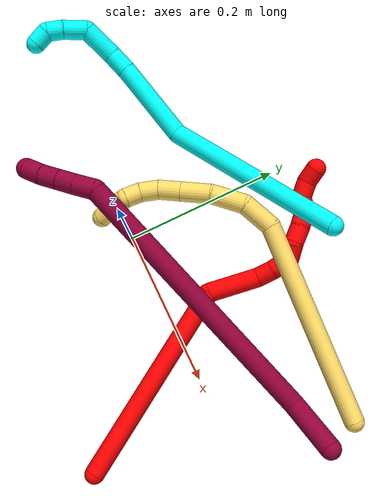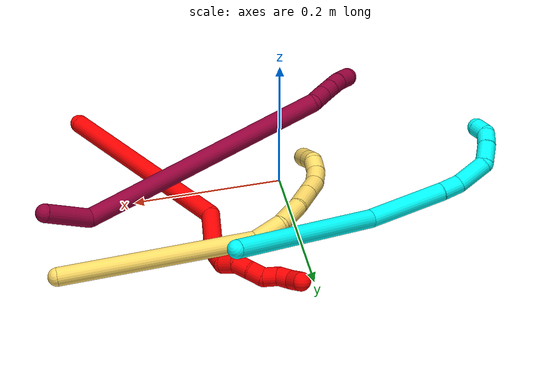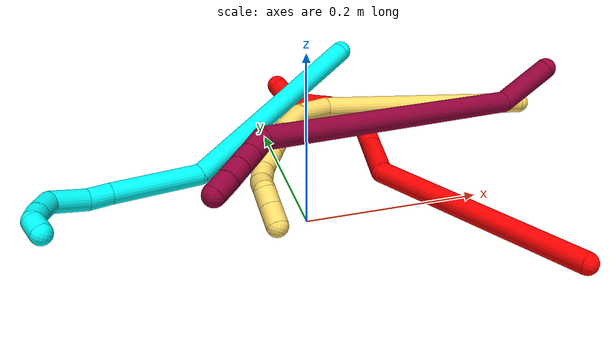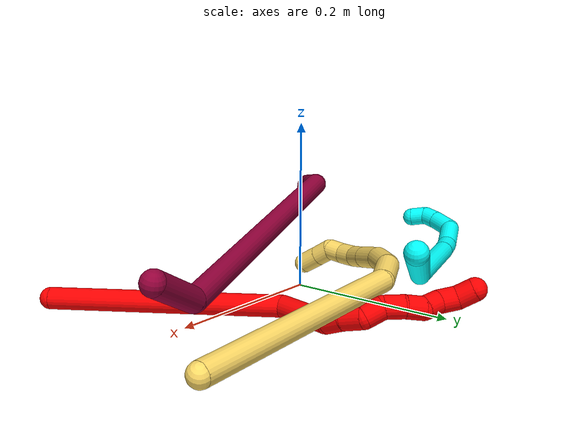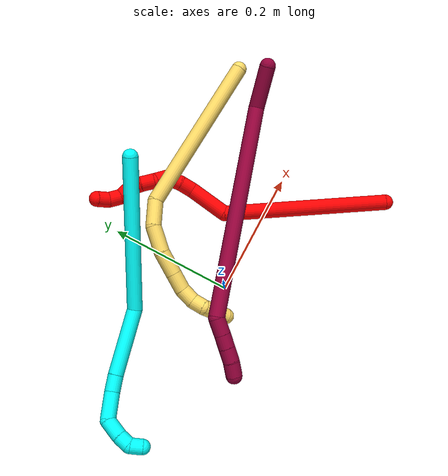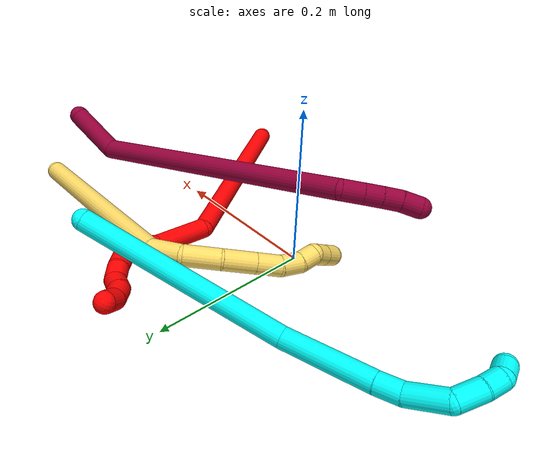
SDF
<sdf version="1.7">
 <world name="default">
  <model name="2">
   <static>0</static>
   <link name="2">
    <collision name="collision-cylinder-e_1_1_4">
     <pose>-0.067282 0.101633 -0.0497 -2.02562 -0.536521 0.829711</pose>
     <geometry><cylinder><radius>0.0125</radius><length>0.263259</length></cylinder></geometry>
     <surface>
      <friction><ode><mu>1.16</mu><mu2>1.16</mu2><slip1>0</slip1><slip2>0</slip2></ode></friction>
      <contact><ode><kp>1e+06</kp><kd>1</kd><max_vel>0</max_vel><min_depth>0.001</min_depth></ode></contact>
     </surface>
    </collision>
    <visual name="visual-cylinder-e_1_1_4">
     <pose>-0.067282 0.101633 -0.0497 -2.02562 -0.536521 0.829711</pose>
     <geometry><cylinder><radius>0.0125</radius><length>0.263259</length></cylinder></geometry>
     <material><ambient>1 0 0 1</ambient></material>
    </visual>
    <collision name="collision-cylinder-e_2_4_5">
     <pose>-0.129361 0.230539 -0.117364 -2.15326 0.158013 -0.291817</pose>
     <geometry><cylinder><radius>0.0125</radius><length>0.066138</length></cylinder></geometry>
     <surface>
      <friction><ode><mu>1.16</mu><mu2>1.16</mu2><slip1>0</slip1><slip2>0</slip2></ode></friction>
      <contact><ode><kp>1e+06</kp><kd>1</kd><max_vel>0</max_vel><min_depth>0.001</min_depth></ode></contact>
     </surface>
    </collision>
    <visual name="visual-cylinder-e_2_4_5">
     <pose>-0.129361 0.230539 -0.117364 -2.15326 0.158013 -0.291817</pose>
     <geometry><cylinder><radius>0.0125</radius><length>0.066138</length></cylinder></geometry>
     <material><ambient>1 0 0 1</ambient></material>
    </visual>
    <collision name="collision-cylinder-e_3_5_6">
     <pose>-0.123428 0.269037 -0.137258 -1.741 0.063919 -0.075831</pose>
     <geometry><cylinder><radius>0.0125</radius><length>0.022827</length></cylinder></geometry>
     <surface>
      <friction><ode><mu>1.16</mu><mu2>1.16</mu2><slip1>0</slip1><slip2>0</slip2></ode></friction>
      <contact><ode><kp>1e+06</kp><kd>1</kd><max_vel>0</max_vel><min_depth>0.001</min_depth></ode></contact>
     </surface>
    </collision>
    <visual name="visual-cylinder-e_3_5_6">
     <pose>-0.123428 0.269037 -0.137258 -1.741 0.063919 -0.075831</pose>
     <geometry><cylinder><radius>0.0125</radius><length>0.022827</length></cylinder></geometry>
     <material><ambient>1 0 0 1</ambient></material>
    </visual>
    <collision name="collision-cylinder-e_4_6_7">
     <pose>-0.123754 0.291784 -0.142481 -1.84923 -0.087812 0.116374</pose>
     <geometry><cylinder><radius>0.0125</radius><length>0.024058</length></cylinder></geometry>
     <surface>
      <friction><ode><mu>1.16</mu><mu2>1.16</mu2><slip1>0</slip1><slip2>0</slip2></ode></friction>
      <contact><ode><kp>1e+06</kp><kd>1</kd><max_vel>0</max_vel><min_depth>0.001</min_depth></ode></contact>
     </surface>
    </collision>
    <visual name="visual-cylinder-e_4_6_7">
     <pose>-0.123754 0.291784 -0.142481 -1.84923 -0.087812 0.116374</pose>
     <geometry><cylinder><radius>0.0125</radius><length>0.024058</length></cylinder></geometry>
     <material><ambient>1 0 0 1</ambient></material>
    </visual>
    <collision name="collision-cylinder-e_5_7_8">
     <pose>-0.131424 0.311554 -0.14424 -1.38688 -0.667612 0.561236</pose>
     <geometry><cylinder><radius>0.0125</radius><length>0.021368</length></cylinder></geometry>
     <surface>
      <friction><ode><mu>1.16</mu><mu2>1.16</mu2><slip1>0</slip1><slip2>0</slip2></ode></friction>
      <contact><ode><kp>1e+06</kp><kd>1</kd><max_vel>0</max_vel><min_depth>0.001</min_depth></ode></contact>
     </surface>
    </collision>
    <visual name="visual-cylinder-e_5_7_8">
     <pose>-0.131424 0.311554 -0.14424 -1.38688 -0.667612 0.561236</pose>
     <geometry><cylinder><radius>0.0125</radius><length>0.021368</length></cylinder></geometry>
     <material><ambient>1 0 0 1</ambient></material>
    </visual>
    <collision name="collision-cylinder-e_6_8_9">
     <pose>-0.145133 0.327549 -0.145998 -1.97273 -0.700375 1.00895</pose>
     <geometry><cylinder><radius>0.0125</radius><length>0.022017</length></cylinder></geometry>
     <surface>
      <friction><ode><mu>1.16</mu><mu2>1.16</mu2><slip1>0</slip1><slip2>0</slip2></ode></friction>
      <contact><ode><kp>1e+06</kp><kd>1</kd><max_vel>0</max_vel><min_depth>0.001</min_depth></ode></contact>
     </surface>
    </collision>
    <visual name="visual-cylinder-e_6_8_9">
     <pose>-0.145133 0.327549 -0.145998 -1.97273 -0.700375 1.00895</pose>
     <geometry><cylinder><radius>0.0125</radius><length>0.022017</length></cylinder></geometry>
     <material><ambient>1 0 0 1</ambient></material>
    </visual>
    <collision name="collision-cylinder-e_7_9_10">
     <pose>-0.159547 0.340988 -0.153201 -2.1727 -0.814339 1.373</pose>
     <geometry><cylinder><radius>0.0125</radius><length>0.020126</length></cylinder></geometry>
     <surface>
      <friction><ode><mu>1.16</mu><mu2>1.16</mu2><slip1>0</slip1><slip2>0</slip2></ode></friction>
      <contact><ode><kp>1e+06</kp><kd>1</kd><max_vel>0</max_vel><min_depth>0.001</min_depth></ode></contact>
     </surface>
    </collision>
    <visual name="visual-cylinder-e_7_9_10">
     <pose>-0.159547 0.340988 -0.153201 -2.1727 -0.814339 1.373</pose>
     <geometry><cylinder><radius>0.0125</radius><length>0.020126</length></cylinder></geometry>
     <material><ambient>1 0 0 1</ambient></material>
    </visual>
    <collision name="collision-cylinder-e_8_10_11">
     <pose>-0.175999 0.350679 -0.156194 -1.34517 -1.1487 0.951799</pose>
     <geometry><cylinder><radius>0.0125</radius><length>0.020023</length></cylinder></geometry>
     <surface>
      <friction><ode><mu>1.16</mu><mu2>1.16</mu2><slip1>0</slip1><slip2>0</slip2></ode></friction>
      <contact><ode><kp>1e+06</kp><kd>1</kd><max_vel>0</max_vel><min_depth>0.001</min_depth></ode></contact>
     </surface>
    </collision>
    <visual name="visual-cylinder-e_8_10_11">
     <pose>-0.175999 0.350679 -0.156194 -1.34517 -1.1487 0.951799</pose>
     <geometry><cylinder><radius>0.0125</radius><length>0.020023</length></cylinder></geometry>
     <material><ambient>1 0 0 1</ambient></material>
    </visual>
    <collision name="collision-cylinder-e_9_11_12">
     <pose>-0.191689 0.362199 -0.156566 -1.74047 -0.70979 0.828131</pose>
     <geometry><cylinder><radius>0.0125</radius><length>0.020126</length></cylinder></geometry>
     <surface>
      <friction><ode><mu>1.16</mu><mu2>1.16</mu2><slip1>0</slip1><slip2>0</slip2></ode></friction>
      <contact><ode><kp>1e+06</kp><kd>1</kd><max_vel>0</max_vel><min_depth>0.001</min_depth></ode></contact>
     </surface>
    </collision>
    <visual name="visual-cylinder-e_9_11_12">
     <pose>-0.191689 0.362199 -0.156566 -1.74047 -0.70979 0.828131</pose>
     <geometry><cylinder><radius>0.0125</radius><length>0.020126</length></cylinder></geometry>
     <material><ambient>1 0 0 1</ambient></material>
    </visual>
    <collision name="collision-cylinder-e_10_12_2">
     <pose>-0.20158 0.379156 -0.157157 -1.49701 -0.338739 0.315034</pose>
     <geometry><cylinder><radius>0.0125</radius><length>0.020057</length></cylinder></geometry>
     <surface>
      <friction><ode><mu>1.16</mu><mu2>1.16</mu2><slip1>0</slip1><slip2>0</slip2></ode></friction>
      <contact><ode><kp>1e+06</kp><kd>1</kd><max_vel>0</max_vel><min_depth>0.001</min_depth></ode></contact>
     </surface>
    </collision>
    <visual name="visual-cylinder-e_10_12_2">
     <pose>-0.20158 0.379156 -0.157157 -1.49701 -0.338739 0.315034</pose>
     <geometry><cylinder><radius>0.0125</radius><length>0.020057</length></cylinder></geometry>
     <material><ambient>1 0 0 1</ambient></material>
    </visual>
    <collision name="collision-sphere-2">
     <pose>-0.204912 0.388588 -0.15646 0 -0 0</pose>
     <geometry><sphere><radius>0.0125</radius></sphere></geometry>
     <surface>
      <friction><ode><mu>1.16</mu><mu2>1.16</mu2><slip1>0</slip1><slip2>0</slip2></ode></friction>
      <contact><ode><kp>1e+06</kp><kd>1</kd><max_vel>0</max_vel><min_depth>0.001</min_depth></ode></contact>
     </surface>
    </collision>
    <visual name="visual-sphere-2">
     <pose>-0.204912 0.388588 -0.15646 0 -0 0</pose>
     <geometry><sphere><radius>0.0125</radius></sphere></geometry>
     <material><ambient>1 0 0 1</ambient></material>
    </visual>
    <collision name="collision-sphere-12">
     <pose>-0.198247 0.369723 -0.157855 0 -0 0</pose>
     <geometry><sphere><radius>0.0125</radius></sphere></geometry>
     <surface>
      <friction><ode><mu>1.16</mu><mu2>1.16</mu2><slip1>0</slip1><slip2>0</slip2></ode></friction>
      <contact><ode><kp>1e+06</kp><kd>1</kd><max_vel>0</max_vel><min_depth>0.001</min_depth></ode></contact>
     </surface>
    </collision>
    <visual name="visual-sphere-12">
     <pose>-0.198247 0.369723 -0.157855 0 -0 0</pose>
     <geometry><sphere><radius>0.0125</radius></sphere></geometry>
     <material><ambient>1 0 0 1</ambient></material>
    </visual>
    <collision name="collision-sphere-11">
     <pose>-0.185131 0.354676 -0.155277 0 -0 0</pose>
     <geometry><sphere><radius>0.0125</radius></sphere></geometry>
     <surface>
      <friction><ode><mu>1.16</mu><mu2>1.16</mu2><slip1>0</slip1><slip2>0</slip2></ode></friction>
      <contact><ode><kp>1e+06</kp><kd>1</kd><max_vel>0</max_vel><min_depth>0.001</min_depth></ode></contact>
     </surface>
    </collision>
    <visual name="visual-sphere-11">
     <pose>-0.185131 0.354676 -0.155277 0 -0 0</pose>
     <geometry><sphere><radius>0.0125</radius></sphere></geometry>
     <material><ambient>1 0 0 1</ambient></material>
    </visual>
    <collision name="collision-sphere-10">
     <pose>-0.166866 0.346681 -0.157112 0 -0 0</pose>
     <geometry><sphere><radius>0.0125</radius></sphere></geometry>
     <surface>
      <friction><ode><mu>1.16</mu><mu2>1.16</mu2><slip1>0</slip1><slip2>0</slip2></ode></friction>
      <contact><ode><kp>1e+06</kp><kd>1</kd><max_vel>0</max_vel><min_depth>0.001</min_depth></ode></contact>
     </surface>
    </collision>
    <visual name="visual-sphere-10">
     <pose>-0.166866 0.346681 -0.157112 0 -0 0</pose>
     <geometry><sphere><radius>0.0125</radius></sphere></geometry>
     <material><ambient>1 0 0 1</ambient></material>
    </visual>
    <collision name="collision-sphere-9">
     <pose>-0.152229 0.335295 -0.149291 0 -0 0</pose>
     <geometry><sphere><radius>0.0125</radius></sphere></geometry>
     <surface>
      <friction><ode><mu>1.16</mu><mu2>1.16</mu2><slip1>0</slip1><slip2>0</slip2></ode></friction>
      <contact><ode><kp>1e+06</kp><kd>1</kd><max_vel>0</max_vel><min_depth>0.001</min_depth></ode></contact>
     </surface>
    </collision>
    <visual name="visual-sphere-9">
     <pose>-0.152229 0.335295 -0.149291 0 -0 0</pose>
     <geometry><sphere><radius>0.0125</radius></sphere></geometry>
     <material><ambient>1 0 0 1</ambient></material>
    </visual>
    <collision name="collision-sphere-4">
     <pose>-0.134565 0.203267 -0.0994 0 -0 0</pose>
     <geometry><sphere><radius>0.0125</radius></sphere></geometry>
     <surface>
      <friction><ode><mu>1.16</mu><mu2>1.16</mu2><slip1>0</slip1><slip2>0</slip2></ode></friction>
      <contact><ode><kp>1e+06</kp><kd>1</kd><max_vel>0</max_vel><min_depth>0.001</min_depth></ode></contact>
     </surface>
    </collision>
    <visual name="visual-sphere-4">
     <pose>-0.134565 0.203267 -0.0994 0 -0 0</pose>
     <geometry><sphere><radius>0.0125</radius></sphere></geometry>
     <material><ambient>1 0 0 1</ambient></material>
    </visual>
    <collision name="collision-sphere-1">
     <geometry><sphere><radius>0.0125</radius></sphere></geometry>
     <surface>
      <friction><ode><mu>1.16</mu><mu2>1.16</mu2><slip1>0</slip1><slip2>0</slip2></ode></friction>
      <contact><ode><kp>1e+06</kp><kd>1</kd><max_vel>0</max_vel><min_depth>0.001</min_depth></ode></contact>
     </surface>
    </collision>
    <visual name="visual-sphere-1">
     <geometry><sphere><radius>0.0125</radius></sphere></geometry>
     <material><ambient>1 0 0 1</ambient></material>
    </visual>
    <collision name="collision-sphere-8">
     <pose>-0.138038 0.319802 -0.142705 0 -0 0</pose>
     <geometry><sphere><radius>0.0125</radius></sphere></geometry>
     <surface>
      <friction><ode><mu>1.16</mu><mu2>1.16</mu2><slip1>0</slip1><slip2>0</slip2></ode></friction>
      <contact><ode><kp>1e+06</kp><kd>1</kd><max_vel>0</max_vel><min_depth>0.001</min_depth></ode></contact>
     </surface>
    </collision>
    <visual name="visual-sphere-8">
     <pose>-0.138038 0.319802 -0.142705 0 -0 0</pose>
     <geometry><sphere><radius>0.0125</radius></sphere></geometry>
     <material><ambient>1 0 0 1</ambient></material>
    </visual>
    <collision name="collision-sphere-5">
     <pose>-0.124157 0.257812 -0.135329 0 -0 0</pose>
     <geometry><sphere><radius>0.0125</radius></sphere></geometry>
     <surface>
      <friction><ode><mu>1.16</mu><mu2>1.16</mu2><slip1>0</slip1><slip2>0</slip2></ode></friction>
      <contact><ode><kp>1e+06</kp><kd>1</kd><max_vel>0</max_vel><min_depth>0.001</min_depth></ode></contact>
     </surface>
    </collision>
    <visual name="visual-sphere-5">
     <pose>-0.124157 0.257812 -0.135329 0 -0 0</pose>
     <geometry><sphere><radius>0.0125</radius></sphere></geometry>
     <material><ambient>1 0 0 1</ambient></material>
    </visual>
    <collision name="collision-sphere-6">
     <pose>-0.122699 0.280263 -0.139187 0 -0 0</pose>
     <geometry><sphere><radius>0.0125</radius></sphere></geometry>
     <surface>
      <friction><ode><mu>1.16</mu><mu2>1.16</mu2><slip1>0</slip1><slip2>0</slip2></ode></friction>
      <contact><ode><kp>1e+06</kp><kd>1</kd><max_vel>0</max_vel><min_depth>0.001</min_depth></ode></contact>
     </surface>
    </collision>
    <visual name="visual-sphere-6">
     <pose>-0.122699 0.280263 -0.139187 0 -0 0</pose>
     <geometry><sphere><radius>0.0125</radius></sphere></geometry>
     <material><ambient>1 0 0 1</ambient></material>
    </visual>
    <collision name="collision-sphere-7">
     <pose>-0.124809 0.303305 -0.145774 0 -0 0</pose>
     <geometry><sphere><radius>0.0125</radius></sphere></geometry>
     <surface>
      <friction><ode><mu>1.16</mu><mu2>1.16</mu2><slip1>0</slip1><slip2>0</slip2></ode></friction>
      <contact><ode><kp>1e+06</kp><kd>1</kd><max_vel>0</max_vel><min_depth>0.001</min_depth></ode></contact>
     </surface>
    </collision>
    <visual name="visual-sphere-7">
     <pose>-0.124809 0.303305 -0.145774 0 -0 0</pose>
     <geometry><sphere><radius>0.0125</radius></sphere></geometry>
     <material><ambient>1 0 0 1</ambient></material>
    </visual>
    <inertial>
     <pose>-0.105406 0.195624 -0.092436 0 -0 0</pose>
     <mass>0.5</mass>
     <inertia>
      <ixx>0.001873</ixx>
      <ixy>0</ixy>
      <ixz>0</ixz>
      <iyy>0.001053</iyy>
      <iyz>0</iyz>
      <izz>-0.000442</izz>
     </inertia>
    </inertial>
   </link>
   <pose>0.247223 -0.165599 0.011497 0.541978 -0.136553 0.017066</pose>
  </model>
  <model name="3">
   <static>0</static>
   <link name="3">
    <collision name="collision-cylinder-e_1_1_4">
     <pose>-0.067639 -0.033608 -0.097127 2.80847 -0.582058 -2.11869</pose>
     <geometry><cylinder><radius>0.0125</radius><length>0.246075</length></cylinder></geometry>
     <surface>
      <friction><ode><mu>1.16</mu><mu2>1.16</mu2><slip1>0</slip1><slip2>0</slip2></ode></friction>
      <contact><ode><kp>1e+06</kp><kd>1</kd><max_vel>0</max_vel><min_depth>0.001</min_depth></ode></contact>
     </surface>
    </collision>
    <visual name="visual-cylinder-e_1_1_4">
     <pose>-0.067639 -0.033608 -0.097127 2.80847 -0.582058 -2.11869</pose>
     <geometry><cylinder><radius>0.0125</radius><length>0.246075</length></cylinder></geometry>
     <material><ambient>0.003922 1 0.996078 1</ambient></material>
    </visual>
    <collision name="collision-cylinder-e_2_4_5">
     <pose>-0.182653 -0.074121 -0.219384 2.87343 -1.06787 -2.69296</pose>
     <geometry><cylinder><radius>0.0125</radius><length>0.10814</length></cylinder></geometry>
     <surface>
      <friction><ode><mu>1.16</mu><mu2>1.16</mu2><slip1>0</slip1><slip2>0</slip2></ode></friction>
      <contact><ode><kp>1e+06</kp><kd>1</kd><max_vel>0</max_vel><min_depth>0.001</min_depth></ode></contact>
     </surface>
    </collision>
    <visual name="visual-cylinder-e_2_4_5">
     <pose>-0.182653 -0.074121 -0.219384 2.87343 -1.06787 -2.69296</pose>
     <geometry><cylinder><radius>0.0125</radius><length>0.10814</length></cylinder></geometry>
     <material><ambient>0.003922 1 0.996078 1</ambient></material>
    </visual>
    <collision name="collision-cylinder-e_3_5_6">
     <pose>-0.241983 -0.083873 -0.250998 2.72779 -1.036 -2.4358</pose>
     <geometry><cylinder><radius>0.0125</radius><length>0.02779</length></cylinder></geometry>
     <surface>
      <friction><ode><mu>1.16</mu><mu2>1.16</mu2><slip1>0</slip1><slip2>0</slip2></ode></friction>
      <contact><ode><kp>1e+06</kp><kd>1</kd><max_vel>0</max_vel><min_depth>0.001</min_depth></ode></contact>
     </surface>
    </collision>
    <visual name="visual-cylinder-e_3_5_6">
     <pose>-0.241983 -0.083873 -0.250998 2.72779 -1.036 -2.4358</pose>
     <geometry><cylinder><radius>0.0125</radius><length>0.02779</length></cylinder></geometry>
     <material><ambient>0.003922 1 0.996078 1</ambient></material>
    </visual>
    <collision name="collision-cylinder-e_4_6_7">
     <pose>-0.27456 -0.094025 -0.262818 2.20171 -1.15743 -1.81999</pose>
     <geometry><cylinder><radius>0.0125</radius><length>0.045038</length></cylinder></geometry>
     <surface>
      <friction><ode><mu>1.16</mu><mu2>1.16</mu2><slip1>0</slip1><slip2>0</slip2></ode></friction>
      <contact><ode><kp>1e+06</kp><kd>1</kd><max_vel>0</max_vel><min_depth>0.001</min_depth></ode></contact>
     </surface>
    </collision>
    <visual name="visual-cylinder-e_4_6_7">
     <pose>-0.27456 -0.094025 -0.262818 2.20171 -1.15743 -1.81999</pose>
     <geometry><cylinder><radius>0.0125</radius><length>0.045038</length></cylinder></geometry>
     <material><ambient>0.003922 1 0.996078 1</ambient></material>
    </visual>
    <collision name="collision-cylinder-e_5_7_8">
     <pose>-0.301739 -0.115309 -0.271255 1.78912 -0.429395 -0.530663</pose>
     <geometry><cylinder><radius>0.0125</radius><length>0.031498</length></cylinder></geometry>
     <surface>
      <friction><ode><mu>1.16</mu><mu2>1.16</mu2><slip1>0</slip1><slip2>0</slip2></ode></friction>
      <contact><ode><kp>1e+06</kp><kd>1</kd><max_vel>0</max_vel><min_depth>0.001</min_depth></ode></contact>
     </surface>
    </collision>
    <visual name="visual-cylinder-e_5_7_8">
     <pose>-0.301739 -0.115309 -0.271255 1.78912 -0.429395 -0.530663</pose>
     <geometry><cylinder><radius>0.0125</radius><length>0.031498</length></cylinder></geometry>
     <material><ambient>0.003922 1 0.996078 1</ambient></material>
    </visual>
    <collision name="collision-cylinder-e_6_8_9">
     <pose>-0.311129 -0.139177 -0.276027 1.73813 -0.275344 -0.324936</pose>
     <geometry><cylinder><radius>0.0125</radius><length>0.020843</length></cylinder></geometry>
     <surface>
      <friction><ode><mu>1.16</mu><mu2>1.16</mu2><slip1>0</slip1><slip2>0</slip2></ode></friction>
      <contact><ode><kp>1e+06</kp><kd>1</kd><max_vel>0</max_vel><min_depth>0.001</min_depth></ode></contact>
     </surface>
    </collision>
    <visual name="visual-cylinder-e_6_8_9">
     <pose>-0.311129 -0.139177 -0.276027 1.73813 -0.275344 -0.324936</pose>
     <geometry><cylinder><radius>0.0125</radius><length>0.020843</length></cylinder></geometry>
     <material><ambient>0.003922 1 0.996078 1</ambient></material>
    </visual>
    <collision name="collision-cylinder-e_7_9_2">
     <pose>-0.309925 -0.158369 -0.279546 1.76702 0.402464 0.487197</pose>
     <geometry><cylinder><radius>0.0125</radius><length>0.020616</length></cylinder></geometry>
     <surface>
      <friction><ode><mu>1.16</mu><mu2>1.16</mu2><slip1>0</slip1><slip2>0</slip2></ode></friction>
      <contact><ode><kp>1e+06</kp><kd>1</kd><max_vel>0</max_vel><min_depth>0.001</min_depth></ode></contact>
     </surface>
    </collision>
    <visual name="visual-cylinder-e_7_9_2">
     <pose>-0.309925 -0.158369 -0.279546 1.76702 0.402464 0.487197</pose>
     <geometry><cylinder><radius>0.0125</radius><length>0.020616</length></cylinder></geometry>
     <material><ambient>0.003922 1 0.996078 1</ambient></material>
    </visual>
    <collision name="collision-sphere-2">
     <pose>-0.305887 -0.167671 -0.281395 0 -0 0</pose>
     <geometry><sphere><radius>0.0125</radius></sphere></geometry>
     <surface>
      <friction><ode><mu>1.16</mu><mu2>1.16</mu2><slip1>0</slip1><slip2>0</slip2></ode></friction>
      <contact><ode><kp>1e+06</kp><kd>1</kd><max_vel>0</max_vel><min_depth>0.001</min_depth></ode></contact>
     </surface>
    </collision>
    <visual name="visual-sphere-2">
     <pose>-0.305887 -0.167671 -0.281395 0 -0 0</pose>
     <geometry><sphere><radius>0.0125</radius></sphere></geometry>
     <material><ambient>0.003922 1 0.996078 1</ambient></material>
    </visual>
    <collision name="collision-sphere-9">
     <pose>-0.313962 -0.149066 -0.277697 0 -0 0</pose>
     <geometry><sphere><radius>0.0125</radius></sphere></geometry>
     <surface>
      <friction><ode><mu>1.16</mu><mu2>1.16</mu2><slip1>0</slip1><slip2>0</slip2></ode></friction>
      <contact><ode><kp>1e+06</kp><kd>1</kd><max_vel>0</max_vel><min_depth>0.001</min_depth></ode></contact>
     </surface>
    </collision>
    <visual name="visual-sphere-9">
     <pose>-0.313962 -0.149066 -0.277697 0 -0 0</pose>
     <geometry><sphere><radius>0.0125</radius></sphere></geometry>
     <material><ambient>0.003922 1 0.996078 1</ambient></material>
    </visual>
    <collision name="collision-sphere-4">
     <pose>-0.135278 -0.067215 -0.194254 0 -0 0</pose>
     <geometry><sphere><radius>0.0125</radius></sphere></geometry>
     <surface>
      <friction><ode><mu>1.16</mu><mu2>1.16</mu2><slip1>0</slip1><slip2>0</slip2></ode></friction>
      <contact><ode><kp>1e+06</kp><kd>1</kd><max_vel>0</max_vel><min_depth>0.001</min_depth></ode></contact>
     </surface>
    </collision>
    <visual name="visual-sphere-4">
     <pose>-0.135278 -0.067215 -0.194254 0 -0 0</pose>
     <geometry><sphere><radius>0.0125</radius></sphere></geometry>
     <material><ambient>0.003922 1 0.996078 1</ambient></material>
    </visual>
    <collision name="collision-sphere-1">
     <geometry><sphere><radius>0.0125</radius></sphere></geometry>
     <surface>
      <friction><ode><mu>1.16</mu><mu2>1.16</mu2><slip1>0</slip1><slip2>0</slip2></ode></friction>
      <contact><ode><kp>1e+06</kp><kd>1</kd><max_vel>0</max_vel><min_depth>0.001</min_depth></ode></contact>
     </surface>
    </collision>
    <visual name="visual-sphere-1">
     <geometry><sphere><radius>0.0125</radius></sphere></geometry>
     <material><ambient>0.003922 1 0.996078 1</ambient></material>
    </visual>
    <collision name="collision-sphere-8">
     <pose>-0.308296 -0.129289 -0.274357 0 -0 0</pose>
     <geometry><sphere><radius>0.0125</radius></sphere></geometry>
     <surface>
      <friction><ode><mu>1.16</mu><mu2>1.16</mu2><slip1>0</slip1><slip2>0</slip2></ode></friction>
      <contact><ode><kp>1e+06</kp><kd>1</kd><max_vel>0</max_vel><min_depth>0.001</min_depth></ode></contact>
     </surface>
    </collision>
    <visual name="visual-sphere-8">
     <pose>-0.308296 -0.129289 -0.274357 0 -0 0</pose>
     <geometry><sphere><radius>0.0125</radius></sphere></geometry>
     <material><ambient>0.003922 1 0.996078 1</ambient></material>
    </visual>
    <collision name="collision-sphere-5">
     <pose>-0.230028 -0.081026 -0.244513 0 -0 0</pose>
     <geometry><sphere><radius>0.0125</radius></sphere></geometry>
     <surface>
      <friction><ode><mu>1.16</mu><mu2>1.16</mu2><slip1>0</slip1><slip2>0</slip2></ode></friction>
      <contact><ode><kp>1e+06</kp><kd>1</kd><max_vel>0</max_vel><min_depth>0.001</min_depth></ode></contact>
     </surface>
    </collision>
    <visual name="visual-sphere-5">
     <pose>-0.230028 -0.081026 -0.244513 0 -0 0</pose>
     <geometry><sphere><radius>0.0125</radius></sphere></geometry>
     <material><ambient>0.003922 1 0.996078 1</ambient></material>
    </visual>
    <collision name="collision-sphere-6">
     <pose>-0.253938 -0.086721 -0.257482 0 -0 0</pose>
     <geometry><sphere><radius>0.0125</radius></sphere></geometry>
     <surface>
      <friction><ode><mu>1.16</mu><mu2>1.16</mu2><slip1>0</slip1><slip2>0</slip2></ode></friction>
      <contact><ode><kp>1e+06</kp><kd>1</kd><max_vel>0</max_vel><min_depth>0.001</min_depth></ode></contact>
     </surface>
    </collision>
    <visual name="visual-sphere-6">
     <pose>-0.253938 -0.086721 -0.257482 0 -0 0</pose>
     <geometry><sphere><radius>0.0125</radius></sphere></geometry>
     <material><ambient>0.003922 1 0.996078 1</ambient></material>
    </visual>
    <collision name="collision-sphere-7">
     <pose>-0.295182 -0.10133 -0.268154 0 -0 0</pose>
     <geometry><sphere><radius>0.0125</radius></sphere></geometry>
     <surface>
      <friction><ode><mu>1.16</mu><mu2>1.16</mu2><slip1>0</slip1><slip2>0</slip2></ode></friction>
      <contact><ode><kp>1e+06</kp><kd>1</kd><max_vel>0</max_vel><min_depth>0.001</min_depth></ode></contact>
     </surface>
    </collision>
    <visual name="visual-sphere-7">
     <pose>-0.295182 -0.10133 -0.268154 0 -0 0</pose>
     <geometry><sphere><radius>0.0125</radius></sphere></geometry>
     <material><ambient>0.003922 1 0.996078 1</ambient></material>
    </visual>
    <inertial>
     <pose>-0.15573 -0.065298 -0.172994 0 -0 0</pose>
     <mass>0.5</mass>
     <inertia><ixx>-0.001534</ixx><ixy>0</ixy><ixz>0</ixz><iyy>-1e-05</iyy><iyz>0</iyz><izz>0.00114</izz></inertia>
    </inertial>
   </link>
   <pose>0.105695 0.21885 0.098997 -0.215718 0.507578 -0.001783</pose>
  </model>
  <model name="5">
   <static>0</static>
   <link name="5">
    <collision name="collision-cylinder-e_1_1_4">
     <pose>-0.123674 0.003517 -0.037995 -3.04929 -1.27153 3.01659</pose>
     <geometry><cylinder><radius>0.0125</radius><length>0.258853</length></cylinder></geometry>
     <surface>
      <friction><ode><mu>1.16</mu><mu2>1.16</mu2><slip1>0</slip1><slip2>0</slip2></ode></friction>
      <contact><ode><kp>1e+06</kp><kd>1</kd><max_vel>0</max_vel><min_depth>0.001</min_depth></ode></contact>
     </surface>
    </collision>
    <visual name="visual-cylinder-e_1_1_4">
     <pose>-0.123674 0.003517 -0.037995 -3.04929 -1.27153 3.01659</pose>
     <geometry><cylinder><radius>0.0125</radius><length>0.258853</length></cylinder></geometry>
     <material><ambient>1 0.858824 0.4 1</ambient></material>
    </visual>
    <collision name="collision-cylinder-e_2_4_5">
     <pose>-0.26445 -0.00162 -0.084305 2.33623 -0.958901 -1.76881</pose>
     <geometry><cylinder><radius>0.0125</radius><length>0.041785</length></cylinder></geometry>
     <surface>
      <friction><ode><mu>1.16</mu><mu2>1.16</mu2><slip1>0</slip1><slip2>0</slip2></ode></friction>
      <contact><ode><kp>1e+06</kp><kd>1</kd><max_vel>0</max_vel><min_depth>0.001</min_depth></ode></contact>
     </surface>
    </collision>
    <visual name="visual-cylinder-e_2_4_5">
     <pose>-0.26445 -0.00162 -0.084305 2.33623 -0.958901 -1.76881</pose>
     <geometry><cylinder><radius>0.0125</radius><length>0.041785</length></cylinder></geometry>
     <material><ambient>1 0.858824 0.4 1</ambient></material>
    </visual>
    <collision name="collision-cylinder-e_3_5_6">
     <pose>-0.292534 -0.023514 -0.105585 2.34571 -0.534991 -1.1555</pose>
     <geometry><cylinder><radius>0.0125</radius><length>0.043081</length></cylinder></geometry>
     <surface>
      <friction><ode><mu>1.16</mu><mu2>1.16</mu2><slip1>0</slip1><slip2>0</slip2></ode></friction>
      <contact><ode><kp>1e+06</kp><kd>1</kd><max_vel>0</max_vel><min_depth>0.001</min_depth></ode></contact>
     </surface>
    </collision>
    <visual name="visual-cylinder-e_3_5_6">
     <pose>-0.292534 -0.023514 -0.105585 2.34571 -0.534991 -1.1555</pose>
     <geometry><cylinder><radius>0.0125</radius><length>0.043081</length></cylinder></geometry>
     <material><ambient>1 0.858824 0.4 1</ambient></material>
    </visual>
    <collision name="collision-cylinder-e_4_6_7">
     <pose>-0.30922 -0.049191 -0.131959 2.39376 -0.302329 -0.740609</pose>
     <geometry><cylinder><radius>0.0125</radius><length>0.038316</length></cylinder></geometry>
     <surface>
      <friction><ode><mu>1.16</mu><mu2>1.16</mu2><slip1>0</slip1><slip2>0</slip2></ode></friction>
      <contact><ode><kp>1e+06</kp><kd>1</kd><max_vel>0</max_vel><min_depth>0.001</min_depth></ode></contact>
     </surface>
    </collision>
    <visual name="visual-cylinder-e_4_6_7">
     <pose>-0.30922 -0.049191 -0.131959 2.39376 -0.302329 -0.740609</pose>
     <geometry><cylinder><radius>0.0125</radius><length>0.038316</length></cylinder></geometry>
     <material><ambient>1 0.858824 0.4 1</ambient></material>
    </visual>
    <collision name="collision-cylinder-e_5_7_8">
     <pose>-0.319367 -0.071175 -0.155691 2.39528 -0.306067 -0.750598</pose>
     <geometry><cylinder><radius>0.0125</radius><length>0.029491</length></cylinder></geometry>
     <surface>
      <friction><ode><mu>1.16</mu><mu2>1.16</mu2><slip1>0</slip1><slip2>0</slip2></ode></friction>
      <contact><ode><kp>1e+06</kp><kd>1</kd><max_vel>0</max_vel><min_depth>0.001</min_depth></ode></contact>
     </surface>
    </collision>
    <visual name="visual-cylinder-e_5_7_8">
     <pose>-0.319367 -0.071175 -0.155691 2.39528 -0.306067 -0.750598</pose>
     <geometry><cylinder><radius>0.0125</radius><length>0.029491</length></cylinder></geometry>
     <material><ambient>1 0.858824 0.4 1</ambient></material>
    </visual>
    <collision name="collision-cylinder-e_6_8_9">
     <pose>-0.325415 -0.090834 -0.172527 2.14293 -0.132612 -0.242296</pose>
     <geometry><cylinder><radius>0.0125</radius><length>0.024271</length></cylinder></geometry>
     <surface>
      <friction><ode><mu>1.16</mu><mu2>1.16</mu2><slip1>0</slip1><slip2>0</slip2></ode></friction>
      <contact><ode><kp>1e+06</kp><kd>1</kd><max_vel>0</max_vel><min_depth>0.001</min_depth></ode></contact>
     </surface>
    </collision>
    <visual name="visual-cylinder-e_6_8_9">
     <pose>-0.325415 -0.090834 -0.172527 2.14293 -0.132612 -0.242296</pose>
     <geometry><cylinder><radius>0.0125</radius><length>0.024271</length></cylinder></geometry>
     <material><ambient>1 0.858824 0.4 1</ambient></material>
    </visual>
    <collision name="collision-cylinder-e_7_9_10">
     <pose>-0.326404 -0.110613 -0.182143 1.88149 0.060555 0.083022</pose>
     <geometry><cylinder><radius>0.0125</radius><length>0.020339</length></cylinder></geometry>
     <surface>
      <friction><ode><mu>1.16</mu><mu2>1.16</mu2><slip1>0</slip1><slip2>0</slip2></ode></friction>
      <contact><ode><kp>1e+06</kp><kd>1</kd><max_vel>0</max_vel><min_depth>0.001</min_depth></ode></contact>
     </surface>
    </collision>
    <visual name="visual-cylinder-e_7_9_10">
     <pose>-0.326404 -0.110613 -0.182143 1.88149 0.060555 0.083022</pose>
     <geometry><cylinder><radius>0.0125</radius><length>0.020339</length></cylinder></geometry>
     <material><ambient>1 0.858824 0.4 1</ambient></material>
    </visual>
    <collision name="collision-cylinder-e_8_10_11">
     <pose>-0.321759 -0.125864 -0.192555 2.48895 0.412867 1.10827</pose>
     <geometry><cylinder><radius>0.0125</radius><length>0.020086</length></cylinder></geometry>
     <surface>
      <friction><ode><mu>1.16</mu><mu2>1.16</mu2><slip1>0</slip1><slip2>0</slip2></ode></friction>
      <contact><ode><kp>1e+06</kp><kd>1</kd><max_vel>0</max_vel><min_depth>0.001</min_depth></ode></contact>
     </surface>
    </collision>
    <visual name="visual-cylinder-e_8_10_11">
     <pose>-0.321759 -0.125864 -0.192555 2.48895 0.412867 1.10827</pose>
     <geometry><cylinder><radius>0.0125</radius><length>0.020086</length></cylinder></geometry>
     <material><ambient>1 0.858824 0.4 1</ambient></material>
    </visual>
    <collision name="collision-cylinder-e_9_11_2">
     <pose>-0.312879 -0.138196 -0.208367 2.47093 0.420199 1.09826</pose>
     <geometry><cylinder><radius>0.0125</radius><length>0.023777</length></cylinder></geometry>
     <surface>
      <friction><ode><mu>1.16</mu><mu2>1.16</mu2><slip1>0</slip1><slip2>0</slip2></ode></friction>
      <contact><ode><kp>1e+06</kp><kd>1</kd><max_vel>0</max_vel><min_depth>0.001</min_depth></ode></contact>
     </surface>
    </collision>
    <visual name="visual-cylinder-e_9_11_2">
     <pose>-0.312879 -0.138196 -0.208367 2.47093 0.420199 1.09826</pose>
     <geometry><cylinder><radius>0.0125</radius><length>0.023777</length></cylinder></geometry>
     <material><ambient>1 0.858824 0.4 1</ambient></material>
    </visual>
    <collision name="collision-sphere-2">
     <pose>-0.30803 -0.144942 -0.21687 0 -0 0</pose>
     <geometry><sphere><radius>0.0125</radius></sphere></geometry>
     <surface>
      <friction><ode><mu>1.16</mu><mu2>1.16</mu2><slip1>0</slip1><slip2>0</slip2></ode></friction>
      <contact><ode><kp>1e+06</kp><kd>1</kd><max_vel>0</max_vel><min_depth>0.001</min_depth></ode></contact>
     </surface>
    </collision>
    <visual name="visual-sphere-2">
     <pose>-0.30803 -0.144942 -0.21687 0 -0 0</pose>
     <geometry><sphere><radius>0.0125</radius></sphere></geometry>
     <material><ambient>1 0.858824 0.4 1</ambient></material>
    </visual>
    <collision name="collision-sphere-11">
     <pose>-0.317729 -0.13145 -0.199864 0 -0 0</pose>
     <geometry><sphere><radius>0.0125</radius></sphere></geometry>
     <surface>
      <friction><ode><mu>1.16</mu><mu2>1.16</mu2><slip1>0</slip1><slip2>0</slip2></ode></friction>
      <contact><ode><kp>1e+06</kp><kd>1</kd><max_vel>0</max_vel><min_depth>0.001</min_depth></ode></contact>
     </surface>
    </collision>
    <visual name="visual-sphere-11">
     <pose>-0.317729 -0.13145 -0.199864 0 -0 0</pose>
     <geometry><sphere><radius>0.0125</radius></sphere></geometry>
     <material><ambient>1 0.858824 0.4 1</ambient></material>
    </visual>
    <collision name="collision-sphere-10">
     <pose>-0.325788 -0.120277 -0.185247 0 -0 0</pose>
     <geometry><sphere><radius>0.0125</radius></sphere></geometry>
     <surface>
      <friction><ode><mu>1.16</mu><mu2>1.16</mu2><slip1>0</slip1><slip2>0</slip2></ode></friction>
      <contact><ode><kp>1e+06</kp><kd>1</kd><max_vel>0</max_vel><min_depth>0.001</min_depth></ode></contact>
     </surface>
    </collision>
    <visual name="visual-sphere-10">
     <pose>-0.325788 -0.120277 -0.185247 0 -0 0</pose>
     <geometry><sphere><radius>0.0125</radius></sphere></geometry>
     <material><ambient>1 0.858824 0.4 1</ambient></material>
    </visual>
    <collision name="collision-sphere-9">
     <pose>-0.327019 -0.100948 -0.17904 0 -0 0</pose>
     <geometry><sphere><radius>0.0125</radius></sphere></geometry>
     <surface>
      <friction><ode><mu>1.16</mu><mu2>1.16</mu2><slip1>0</slip1><slip2>0</slip2></ode></friction>
      <contact><ode><kp>1e+06</kp><kd>1</kd><max_vel>0</max_vel><min_depth>0.001</min_depth></ode></contact>
     </surface>
    </collision>
    <visual name="visual-sphere-9">
     <pose>-0.327019 -0.100948 -0.17904 0 -0 0</pose>
     <geometry><sphere><radius>0.0125</radius></sphere></geometry>
     <material><ambient>1 0.858824 0.4 1</ambient></material>
    </visual>
    <collision name="collision-sphere-4">
     <pose>-0.247348 0.007034 -0.07599 0 -0 0</pose>
     <geometry><sphere><radius>0.0125</radius></sphere></geometry>
     <surface>
      <friction><ode><mu>1.16</mu><mu2>1.16</mu2><slip1>0</slip1><slip2>0</slip2></ode></friction>
      <contact><ode><kp>1e+06</kp><kd>1</kd><max_vel>0</max_vel><min_depth>0.001</min_depth></ode></contact>
     </surface>
    </collision>
    <visual name="visual-sphere-4">
     <pose>-0.247348 0.007034 -0.07599 0 -0 0</pose>
     <geometry><sphere><radius>0.0125</radius></sphere></geometry>
     <material><ambient>1 0.858824 0.4 1</ambient></material>
    </visual>
    <collision name="collision-sphere-1">
     <geometry><sphere><radius>0.0125</radius></sphere></geometry>
     <surface>
      <friction><ode><mu>1.16</mu><mu2>1.16</mu2><slip1>0</slip1><slip2>0</slip2></ode></friction>
      <contact><ode><kp>1e+06</kp><kd>1</kd><max_vel>0</max_vel><min_depth>0.001</min_depth></ode></contact>
     </surface>
    </collision>
    <visual name="visual-sphere-1">
     <geometry><sphere><radius>0.0125</radius></sphere></geometry>
     <material><ambient>1 0.858824 0.4 1</ambient></material>
    </visual>
    <collision name="collision-sphere-8">
     <pose>-0.32381 -0.080721 -0.166014 0 -0 0</pose>
     <geometry><sphere><radius>0.0125</radius></sphere></geometry>
     <surface>
      <friction><ode><mu>1.16</mu><mu2>1.16</mu2><slip1>0</slip1><slip2>0</slip2></ode></friction>
      <contact><ode><kp>1e+06</kp><kd>1</kd><max_vel>0</max_vel><min_depth>0.001</min_depth></ode></contact>
     </surface>
    </collision>
    <visual name="visual-sphere-8">
     <pose>-0.32381 -0.080721 -0.166014 0 -0 0</pose>
     <geometry><sphere><radius>0.0125</radius></sphere></geometry>
     <material><ambient>1 0.858824 0.4 1</ambient></material>
    </visual>
    <collision name="collision-sphere-5">
     <pose>-0.281552 -0.010274 -0.09262 0 -0 0</pose>
     <geometry><sphere><radius>0.0125</radius></sphere></geometry>
     <surface>
      <friction><ode><mu>1.16</mu><mu2>1.16</mu2><slip1>0</slip1><slip2>0</slip2></ode></friction>
      <contact><ode><kp>1e+06</kp><kd>1</kd><max_vel>0</max_vel><min_depth>0.001</min_depth></ode></contact>
     </surface>
    </collision>
    <visual name="visual-sphere-5">
     <pose>-0.281552 -0.010274 -0.09262 0 -0 0</pose>
     <geometry><sphere><radius>0.0125</radius></sphere></geometry>
     <material><ambient>1 0.858824 0.4 1</ambient></material>
    </visual>
    <collision name="collision-sphere-6">
     <pose>-0.303516 -0.036753 -0.11855 0 -0 0</pose>
     <geometry><sphere><radius>0.0125</radius></sphere></geometry>
     <surface>
      <friction><ode><mu>1.16</mu><mu2>1.16</mu2><slip1>0</slip1><slip2>0</slip2></ode></friction>
      <contact><ode><kp>1e+06</kp><kd>1</kd><max_vel>0</max_vel><min_depth>0.001</min_depth></ode></contact>
     </surface>
    </collision>
    <visual name="visual-sphere-6">
     <pose>-0.303516 -0.036753 -0.11855 0 -0 0</pose>
     <geometry><sphere><radius>0.0125</radius></sphere></geometry>
     <material><ambient>1 0.858824 0.4 1</ambient></material>
    </visual>
    <collision name="collision-sphere-7">
     <pose>-0.314924 -0.061629 -0.145368 0 -0 0</pose>
     <geometry><sphere><radius>0.0125</radius></sphere></geometry>
     <surface>
      <friction><ode><mu>1.16</mu><mu2>1.16</mu2><slip1>0</slip1><slip2>0</slip2></ode></friction>
      <contact><ode><kp>1e+06</kp><kd>1</kd><max_vel>0</max_vel><min_depth>0.001</min_depth></ode></contact>
     </surface>
    </collision>
    <visual name="visual-sphere-7">
     <pose>-0.314924 -0.061629 -0.145368 0 -0 0</pose>
     <geometry><sphere><radius>0.0125</radius></sphere></geometry>
     <material><ambient>1 0.858824 0.4 1</ambient></material>
    </visual>
    <inertial>
     <pose>-0.210744 -0.028845 -0.088537 0 -0 0</pose>
     <mass>0.5</mass>
     <inertia>
      <ixx>-0.000397</ixx>
      <ixy>0</ixy>
      <ixz>0</ixz>
      <iyy>0.001482</iyy>
      <iyz>0</iyz>
      <izz>0.001366</izz>
     </inertia>
    </inertial>
   </link>
   <pose>0.326683 0.147574 0.030659 -0.442456 0.366739 -0.150969</pose>
  </model>
  <model name="8">
   <static>0</static>
   <link name="8">
    <collision name="collision-cylinder-e_1_1_4">
     <pose>-0.018542 -0.020498 0.019465 0.811252 -0.580539 -0.25516</pose>
     <geometry><cylinder><radius>0.0125</radius><length>0.067613</length></cylinder></geometry>
     <surface>
      <friction><ode><mu>1.16</mu><mu2>1.16</mu2><slip1>0</slip1><slip2>0</slip2></ode></friction>
      <contact><ode><kp>1e+06</kp><kd>1</kd><max_vel>0</max_vel><min_depth>0.001</min_depth></ode></contact>
     </surface>
    </collision>
    <visual name="visual-cylinder-e_1_1_4">
     <pose>-0.018542 -0.020498 0.019465 0.811252 -0.580539 -0.25516</pose>
     <geometry><cylinder><radius>0.0125</radius><length>0.067613</length></cylinder></geometry>
     <material><ambient>0.584314 0 0.227451 1</ambient></material>
    </visual>
    <collision name="collision-cylinder-e_2_4_5">
     <pose>-0.182775 -0.129501 0.043026 1.52455 -1.02442 -0.985371</pose>
     <geometry><cylinder><radius>0.0125</radius><length>0.341032</length></cylinder></geometry>
     <surface>
      <friction><ode><mu>1.16</mu><mu2>1.16</mu2><slip1>0</slip1><slip2>0</slip2></ode></friction>
      <contact><ode><kp>1e+06</kp><kd>1</kd><max_vel>0</max_vel><min_depth>0.001</min_depth></ode></contact>
     </surface>
    </collision>
    <visual name="visual-cylinder-e_2_4_5">
     <pose>-0.182775 -0.129501 0.043026 1.52455 -1.02442 -0.985371</pose>
     <geometry><cylinder><radius>0.0125</radius><length>0.341032</length></cylinder></geometry>
     <material><ambient>0.584314 0 0.227451 1</ambient></material>
    </visual>
    <collision name="collision-cylinder-e_3_5_6">
     <pose>-0.340117 -0.218966 0.052734 0.169567 -1.11628 -0.106026</pose>
     <geometry><cylinder><radius>0.0125</radius><length>0.025935</length></cylinder></geometry>
     <surface>
      <friction><ode><mu>1.16</mu><mu2>1.16</mu2><slip1>0</slip1><slip2>0</slip2></ode></friction>
      <contact><ode><kp>1e+06</kp><kd>1</kd><max_vel>0</max_vel><min_depth>0.001</min_depth></ode></contact>
     </surface>
    </collision>
    <visual name="visual-cylinder-e_3_5_6">
     <pose>-0.340117 -0.218966 0.052734 0.169567 -1.11628 -0.106026</pose>
     <geometry><cylinder><radius>0.0125</radius><length>0.025935</length></cylinder></geometry>
     <material><ambient>0.584314 0 0.227451 1</ambient></material>
    </visual>
    <collision name="collision-cylinder-e_4_6_7">
     <pose>-0.361338 -0.220956 0.062819 0.22621 -1.12356 -0.142752</pose>
     <geometry><cylinder><radius>0.0125</radius><length>0.021227</length></cylinder></geometry>
     <surface>
      <friction><ode><mu>1.16</mu><mu2>1.16</mu2><slip1>0</slip1><slip2>0</slip2></ode></friction>
      <contact><ode><kp>1e+06</kp><kd>1</kd><max_vel>0</max_vel><min_depth>0.001</min_depth></ode></contact>
     </surface>
    </collision>
    <visual name="visual-cylinder-e_4_6_7">
     <pose>-0.361338 -0.220956 0.062819 0.22621 -1.12356 -0.142752</pose>
     <geometry><cylinder><radius>0.0125</radius><length>0.021227</length></cylinder></geometry>
     <material><ambient>0.584314 0 0.227451 1</ambient></material>
    </visual>
    <collision name="collision-cylinder-e_5_7_8">
     <pose>-0.380656 -0.22307 0.072072 0.223098 -1.10496 -0.137899</pose>
     <geometry><cylinder><radius>0.0125</radius><length>0.021823</length></cylinder></geometry>
     <surface>
      <friction><ode><mu>1.16</mu><mu2>1.16</mu2><slip1>0</slip1><slip2>0</slip2></ode></friction>
      <contact><ode><kp>1e+06</kp><kd>1</kd><max_vel>0</max_vel><min_depth>0.001</min_depth></ode></contact>
     </surface>
    </collision>
    <visual name="visual-cylinder-e_5_7_8">
     <pose>-0.380656 -0.22307 0.072072 0.223098 -1.10496 -0.137899</pose>
     <geometry><cylinder><radius>0.0125</radius><length>0.021823</length></cylinder></geometry>
     <material><ambient>0.584314 0 0.227451 1</ambient></material>
    </visual>
    <collision name="collision-cylinder-e_6_8_2">
     <pose>-0.399737 -0.226648 0.082491 0.416282 -0.986867 -0.2262</pose>
     <geometry><cylinder><radius>0.0125</radius><length>0.02237</length></cylinder></geometry>
     <surface>
      <friction><ode><mu>1.16</mu><mu2>1.16</mu2><slip1>0</slip1><slip2>0</slip2></ode></friction>
      <contact><ode><kp>1e+06</kp><kd>1</kd><max_vel>0</max_vel><min_depth>0.001</min_depth></ode></contact>
     </surface>
    </collision>
    <visual name="visual-cylinder-e_6_8_2">
     <pose>-0.399737 -0.226648 0.082491 0.416282 -0.986867 -0.2262</pose>
     <geometry><cylinder><radius>0.0125</radius><length>0.02237</length></cylinder></geometry>
     <material><ambient>0.584314 0 0.227451 1</ambient></material>
    </visual>
    <collision name="collision-sphere-2">
     <pose>-0.409069 -0.229141 0.088131 0 -0 0</pose>
     <geometry><sphere><radius>0.0125</radius></sphere></geometry>
     <surface>
      <friction><ode><mu>1.16</mu><mu2>1.16</mu2><slip1>0</slip1><slip2>0</slip2></ode></friction>
      <contact><ode><kp>1e+06</kp><kd>1</kd><max_vel>0</max_vel><min_depth>0.001</min_depth></ode></contact>
     </surface>
    </collision>
    <visual name="visual-sphere-2">
     <pose>-0.409069 -0.229141 0.088131 0 -0 0</pose>
     <geometry><sphere><radius>0.0125</radius></sphere></geometry>
     <material><ambient>0.584314 0 0.227451 1</ambient></material>
    </visual>
    <collision name="collision-sphere-4">
     <pose>-0.037084 -0.040997 0.03893 0 -0 0</pose>
     <geometry><sphere><radius>0.0125</radius></sphere></geometry>
     <surface>
      <friction><ode><mu>1.16</mu><mu2>1.16</mu2><slip1>0</slip1><slip2>0</slip2></ode></friction>
      <contact><ode><kp>1e+06</kp><kd>1</kd><max_vel>0</max_vel><min_depth>0.001</min_depth></ode></contact>
     </surface>
    </collision>
    <visual name="visual-sphere-4">
     <pose>-0.037084 -0.040997 0.03893 0 -0 0</pose>
     <geometry><sphere><radius>0.0125</radius></sphere></geometry>
     <material><ambient>0.584314 0 0.227451 1</ambient></material>
    </visual>
    <collision name="collision-sphere-1">
     <geometry><sphere><radius>0.0125</radius></sphere></geometry>
     <surface>
      <friction><ode><mu>1.16</mu><mu2>1.16</mu2><slip1>0</slip1><slip2>0</slip2></ode></friction>
      <contact><ode><kp>1e+06</kp><kd>1</kd><max_vel>0</max_vel><min_depth>0.001</min_depth></ode></contact>
     </surface>
    </collision>
    <visual name="visual-sphere-1">
     <geometry><sphere><radius>0.0125</radius></sphere></geometry>
     <material><ambient>0.584314 0 0.227451 1</ambient></material>
    </visual>
    <collision name="collision-sphere-8">
     <pose>-0.390405 -0.224154 0.076851 0 -0 0</pose>
     <geometry><sphere><radius>0.0125</radius></sphere></geometry>
     <surface>
      <friction><ode><mu>1.16</mu><mu2>1.16</mu2><slip1>0</slip1><slip2>0</slip2></ode></friction>
      <contact><ode><kp>1e+06</kp><kd>1</kd><max_vel>0</max_vel><min_depth>0.001</min_depth></ode></contact>
     </surface>
    </collision>
    <visual name="visual-sphere-8">
     <pose>-0.390405 -0.224154 0.076851 0 -0 0</pose>
     <geometry><sphere><radius>0.0125</radius></sphere></geometry>
     <material><ambient>0.584314 0 0.227451 1</ambient></material>
    </visual>
    <collision name="collision-sphere-5">
     <pose>-0.328466 -0.218005 0.047123 0 -0 0</pose>
     <geometry><sphere><radius>0.0125</radius></sphere></geometry>
     <surface>
      <friction><ode><mu>1.16</mu><mu2>1.16</mu2><slip1>0</slip1><slip2>0</slip2></ode></friction>
      <contact><ode><kp>1e+06</kp><kd>1</kd><max_vel>0</max_vel><min_depth>0.001</min_depth></ode></contact>
     </surface>
    </collision>
    <visual name="visual-sphere-5">
     <pose>-0.328466 -0.218005 0.047123 0 -0 0</pose>
     <geometry><sphere><radius>0.0125</radius></sphere></geometry>
     <material><ambient>0.584314 0 0.227451 1</ambient></material>
    </visual>
    <collision name="collision-sphere-6">
     <pose>-0.351768 -0.219926 0.058346 0 -0 0</pose>
     <geometry><sphere><radius>0.0125</radius></sphere></geometry>
     <surface>
      <friction><ode><mu>1.16</mu><mu2>1.16</mu2><slip1>0</slip1><slip2>0</slip2></ode></friction>
      <contact><ode><kp>1e+06</kp><kd>1</kd><max_vel>0</max_vel><min_depth>0.001</min_depth></ode></contact>
     </surface>
    </collision>
    <visual name="visual-sphere-6">
     <pose>-0.351768 -0.219926 0.058346 0 -0 0</pose>
     <geometry><sphere><radius>0.0125</radius></sphere></geometry>
     <material><ambient>0.584314 0 0.227451 1</ambient></material>
    </visual>
    <collision name="collision-sphere-7">
     <pose>-0.370908 -0.221985 0.067292 0 -0 0</pose>
     <geometry><sphere><radius>0.0125</radius></sphere></geometry>
     <surface>
      <friction><ode><mu>1.16</mu><mu2>1.16</mu2><slip1>0</slip1><slip2>0</slip2></ode></friction>
      <contact><ode><kp>1e+06</kp><kd>1</kd><max_vel>0</max_vel><min_depth>0.001</min_depth></ode></contact>
     </surface>
    </collision>
    <visual name="visual-sphere-7">
     <pose>-0.370908 -0.221985 0.067292 0 -0 0</pose>
     <geometry><sphere><radius>0.0125</radius></sphere></geometry>
     <material><ambient>0.584314 0 0.227451 1</ambient></material>
    </visual>
    <inertial>
     <pose>-0.194652 -0.131714 0.044217 0 -0 0</pose>
     <mass>0.5</mass>
     <inertia>
      <ixx>-0.000496</ixx>
      <ixy>0</ixy>
      <ixz>0</ixz>
      <iyy>0.001013</iyy>
      <iyz>0</iyz>
      <izz>0.004605</izz>
     </inertia>
    </inertial>
   </link>
   <pose>0.330752 0.099855 0.099665 3.0174 0.27785 0.850277</pose>
  </model>
 </world>
</sdf>
